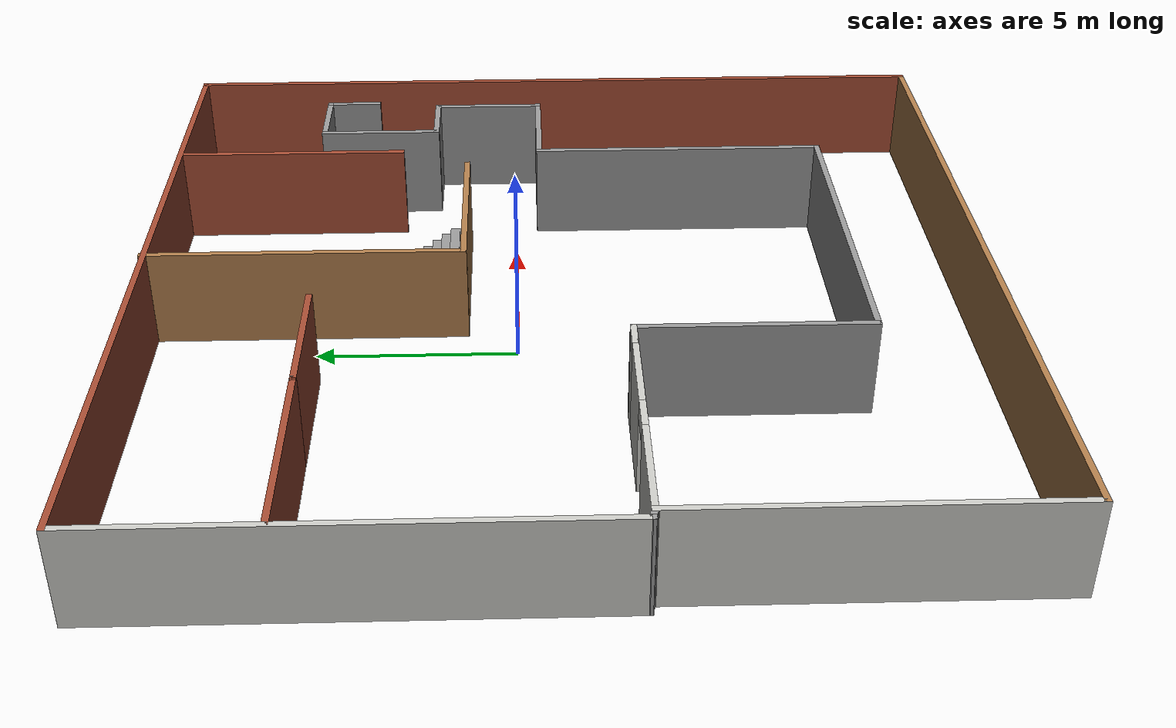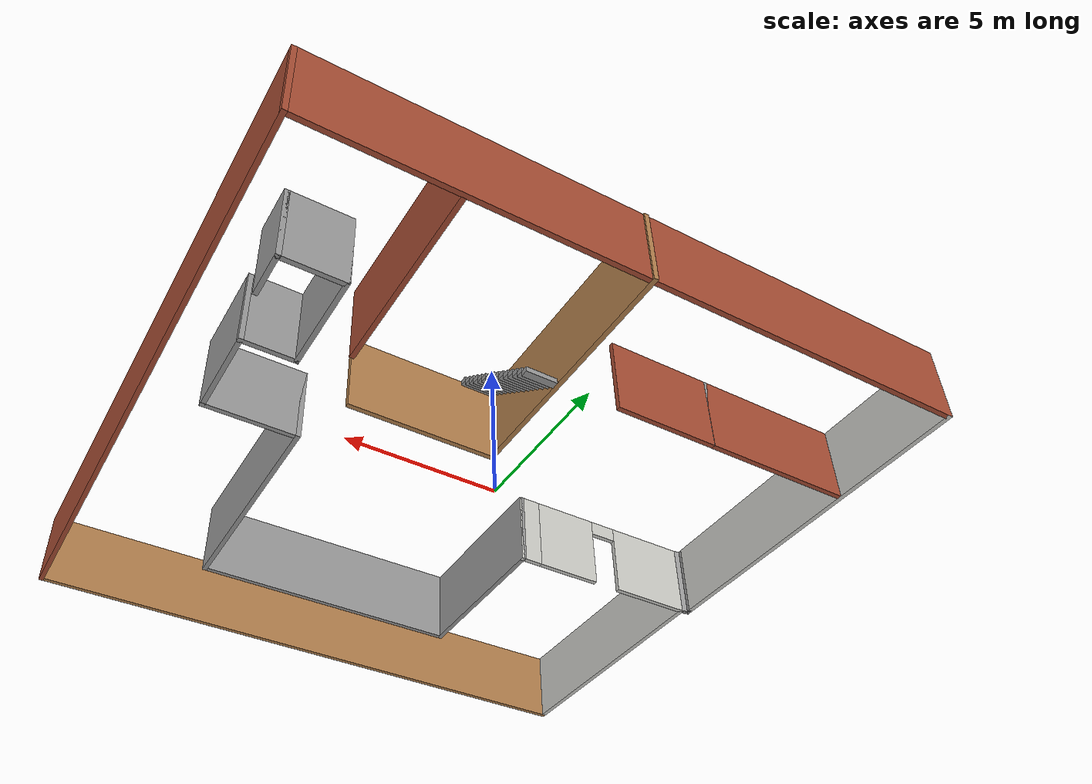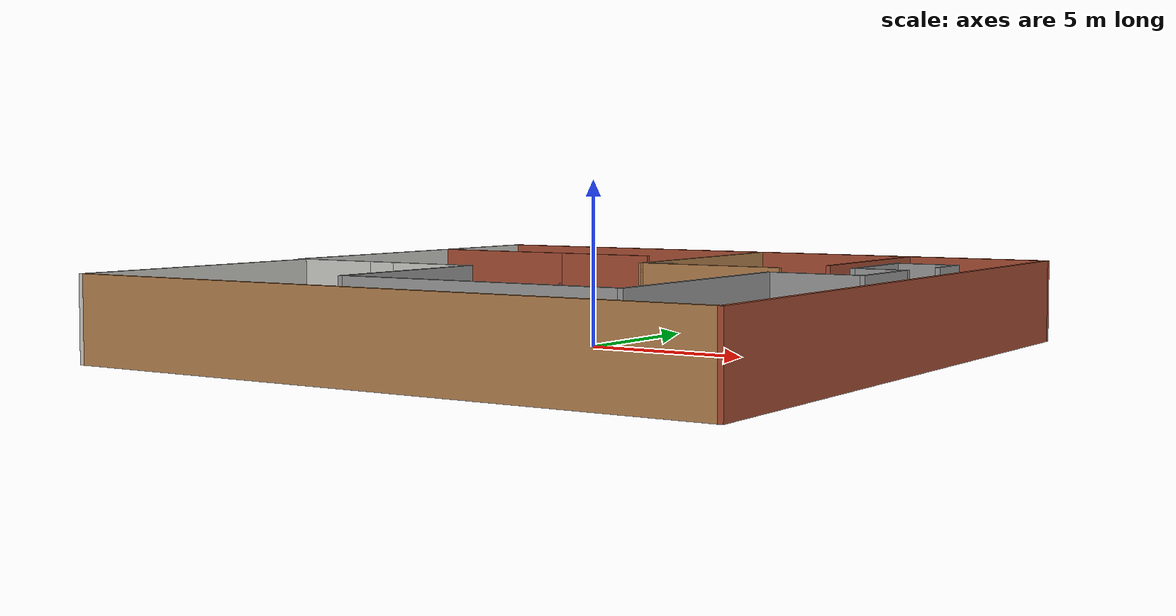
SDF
<?xml version='1.0'?>
<sdf version='1.6'>
  <model name='myroom'>
    <pose frame=''>0.693375 -1.16649 0 0 -0 0</pose>
    <link name='Stairs_1'>
      <visual name='Stairs_1_Visual_0'>
        <pose frame=''>0.763284 5.95555 0.083333 0 -0 0</pose>
        <geometry>
          <box>
            <size>1 0.233333 0.166667</size>
          </box>
        </geometry>
        <material>
          <script>
            <uri>file://media/materials/scripts/gazebo.material</uri>
            <name>Gazebo/Grey</name>
          </script>
          <ambient>1 1 1 1</ambient>
        </material>
      </visual>
      <collision name='Stairs_1_Collision_0'>
        <geometry>
          <box>
            <size>1 0.233333 0.166667</size>
          </box>
        </geometry>
        <pose frame=''>0.763284 5.95555 0.083333 0 -0 0</pose>
      </collision>
      <visual name='Stairs_1_Visual_1'>
        <pose frame=''>0.763284 5.72222 0.25 0 -0 0</pose>
        <geometry>
          <box>
            <size>1 0.233333 0.166667</size>
          </box>
        </geometry>
        <material>
          <script>
            <uri>file://media/materials/scripts/gazebo.material</uri>
            <name>Gazebo/Grey</name>
          </script>
          <ambient>1 1 1 1</ambient>
        </material>
      </visual>
      <collision name='Stairs_1_Collision_1'>
        <geometry>
          <box>
            <size>1 0.233333 0.166667</size>
          </box>
        </geometry>
        <pose frame=''>0.763284 5.72222 0.25 0 -0 0</pose>
      </collision>
      <visual name='Stairs_1_Visual_2'>
        <pose frame=''>0.763284 5.48889 0.416667 0 -0 0</pose>
        <geometry>
          <box>
            <size>1 0.233333 0.166667</size>
          </box>
        </geometry>
        <material>
          <script>
            <uri>file://media/materials/scripts/gazebo.material</uri>
            <name>Gazebo/Grey</name>
          </script>
          <ambient>1 1 1 1</ambient>
        </material>
      </visual>
      <collision name='Stairs_1_Collision_2'>
        <geometry>
          <box>
            <size>1 0.233333 0.166667</size>
          </box>
        </geometry>
        <pose frame=''>0.763284 5.48889 0.416667 0 -0 0</pose>
      </collision>
      <visual name='Stairs_1_Visual_3'>
        <pose frame=''>0.763284 5.25555 0.583333 0 -0 0</pose>
        <geometry>
          <box>
            <size>1 0.233333 0.166667</size>
          </box>
        </geometry>
        <material>
          <script>
            <uri>file://media/materials/scripts/gazebo.material</uri>
            <name>Gazebo/Grey</name>
          </script>
          <ambient>1 1 1 1</ambient>
        </material>
      </visual>
      <collision name='Stairs_1_Collision_3'>
        <geometry>
          <box>
            <size>1 0.233333 0.166667</size>
          </box>
        </geometry>
        <pose frame=''>0.763284 5.25555 0.583333 0 -0 0</pose>
      </collision>
      <visual name='Stairs_1_Visual_4'>
        <pose frame=''>0.763284 5.02222 0.75 0 -0 0</pose>
        <geometry>
          <box>
            <size>1 0.233333 0.166667</size>
          </box>
        </geometry>
        <material>
          <script>
            <uri>file://media/materials/scripts/gazebo.material</uri>
            <name>Gazebo/Grey</name>
          </script>
          <ambient>1 1 1 1</ambient>
        </material>
      </visual>
      <collision name='Stairs_1_Collision_4'>
        <geometry>
          <box>
            <size>1 0.233333 0.166667</size>
          </box>
        </geometry>
        <pose frame=''>0.763284 5.02222 0.75 0 -0 0</pose>
      </collision>
      <visual name='Stairs_1_Visual_5'>
        <pose frame=''>0.763284 4.78889 0.916667 0 -0 0</pose>
        <geometry>
          <box>
            <size>1 0.233333 0.166667</size>
          </box>
        </geometry>
        <material>
          <script>
            <uri>file://media/materials/scripts/gazebo.material</uri>
            <name>Gazebo/Grey</name>
          </script>
          <ambient>1 1 1 1</ambient>
        </material>
      </visual>
      <collision name='Stairs_1_Collision_5'>
        <geometry>
          <box>
            <size>1 0.233333 0.166667</size>
          </box>
        </geometry>
        <pose frame=''>0.763284 4.78889 0.916667 0 -0 0</pose>
      </collision>
      <visual name='Stairs_1_Visual_6'>
        <pose frame=''>0.763284 4.55555 1.08333 0 -0 0</pose>
        <geometry>
          <box>
            <size>1 0.233333 0.166667</size>
          </box>
        </geometry>
        <material>
          <script>
            <uri>file://media/materials/scripts/gazebo.material</uri>
            <name>Gazebo/Grey</name>
          </script>
          <ambient>1 1 1 1</ambient>
        </material>
      </visual>
      <collision name='Stairs_1_Collision_6'>
        <geometry>
          <box>
            <size>1 0.233333 0.166667</size>
          </box>
        </geometry>
        <pose frame=''>0.763284 4.55555 1.08333 0 -0 0</pose>
      </collision>
      <visual name='Stairs_1_Visual_7'>
        <pose frame=''>0.763284 4.32222 1.25 0 -0 0</pose>
        <geometry>
          <box>
            <size>1 0.233333 0.166667</size>
          </box>
        </geometry>
        <material>
          <script>
            <uri>file://media/materials/scripts/gazebo.material</uri>
            <name>Gazebo/Grey</name>
          </script>
          <ambient>1 1 1 1</ambient>
        </material>
      </visual>
      <collision name='Stairs_1_Collision_7'>
        <geometry>
          <box>
            <size>1 0.233333 0.166667</size>
          </box>
        </geometry>
        <pose frame=''>0.763284 4.32222 1.25 0 -0 0</pose>
      </collision>
      <visual name='Stairs_1_Visual_8'>
        <pose frame=''>0.763284 4.08889 1.41667 0 -0 0</pose>
        <geometry>
          <box>
            <size>1 0.233333 0.166667</size>
          </box>
        </geometry>
        <material>
          <script>
            <uri>file://media/materials/scripts/gazebo.material</uri>
            <name>Gazebo/Grey</name>
          </script>
          <ambient>1 1 1 1</ambient>
        </material>
      </visual>
      <collision name='Stairs_1_Collision_8'>
        <geometry>
          <box>
            <size>1 0.233333 0.166667</size>
          </box>
        </geometry>
        <pose frame=''>0.763284 4.08889 1.41667 0 -0 0</pose>
      </collision>
      <visual name='Stairs_1_Visual_9'>
        <pose frame=''>0.763284 3.85555 1.58333 0 -0 0</pose>
        <geometry>
          <box>
            <size>1 0.233333 0.166667</size>
          </box>
        </geometry>
        <material>
          <script>
            <uri>file://media/materials/scripts/gazebo.material</uri>
            <name>Gazebo/Grey</name>
          </script>
          <ambient>1 1 1 1</ambient>
        </material>
      </visual>
      <collision name='Stairs_1_Collision_9'>
        <geometry>
          <box>
            <size>1 0.233333 0.166667</size>
          </box>
        </geometry>
        <pose frame=''>0.763284 3.85555 1.58333 0 -0 0</pose>
      </collision>
      <visual name='Stairs_1_Visual_10'>
        <pose frame=''>0.763284 3.62222 1.75 0 -0 0</pose>
        <geometry>
          <box>
            <size>1 0.233333 0.166667</size>
          </box>
        </geometry>
        <material>
          <script>
            <uri>file://media/materials/scripts/gazebo.material</uri>
            <name>Gazebo/Grey</name>
          </script>
          <ambient>1 1 1 1</ambient>
        </material>
      </visual>
      <collision name='Stairs_1_Collision_10'>
        <geometry>
          <box>
            <size>1 0.233333 0.166667</size>
          </box>
        </geometry>
        <pose frame=''>0.763284 3.62222 1.75 0 -0 0</pose>
      </collision>
      <visual name='Stairs_1_Visual_11'>
        <pose frame=''>0.763284 3.38889 1.91667 0 -0 0</pose>
        <geometry>
          <box>
            <size>1 0.233333 0.166667</size>
          </box>
        </geometry>
        <material>
          <script>
            <uri>file://media/materials/scripts/gazebo.material</uri>
            <name>Gazebo/Grey</name>
          </script>
          <ambient>1 1 1 1</ambient>
        </material>
      </visual>
      <collision name='Stairs_1_Collision_11'>
        <geometry>
          <box>
            <size>1 0.233333 0.166667</size>
          </box>
        </geometry>
        <pose frame=''>0.763284 3.38889 1.91667 0 -0 0</pose>
      </collision>
      <visual name='Stairs_1_Visual_12'>
        <pose frame=''>0.763284 3.15555 2.08333 0 -0 0</pose>
        <geometry>
          <box>
            <size>1 0.233333 0.166667</size>
          </box>
        </geometry>
        <material>
          <script>
            <uri>file://media/materials/scripts/gazebo.material</uri>
            <name>Gazebo/Grey</name>
          </script>
          <ambient>1 1 1 1</ambient>
        </material>
      </visual>
      <collision name='Stairs_1_Collision_12'>
        <geometry>
          <box>
            <size>1 0.233333 0.166667</size>
          </box>
        </geometry>
        <pose frame=''>0.763284 3.15555 2.08333 0 -0 0</pose>
      </collision>
      <visual name='Stairs_1_Visual_13'>
        <pose frame=''>0.763284 2.92222 2.25 0 -0 0</pose>
        <geometry>
          <box>
            <size>1 0.233333 0.166667</size>
          </box>
        </geometry>
        <material>
          <script>
            <uri>file://media/materials/scripts/gazebo.material</uri>
            <name>Gazebo/Grey</name>
          </script>
          <ambient>1 1 1 1</ambient>
        </material>
      </visual>
      <collision name='Stairs_1_Collision_13'>
        <geometry>
          <box>
            <size>1 0.233333 0.166667</size>
          </box>
        </geometry>
        <pose frame=''>0.763284 2.92222 2.25 0 -0 0</pose>
      </collision>
      <visual name='Stairs_1_Visual_14'>
        <pose frame=''>0.763284 2.68889 2.41667 0 -0 0</pose>
        <geometry>
          <box>
            <size>1 0.233333 0.166667</size>
          </box>
        </geometry>
        <material>
          <script>
            <uri>file://media/materials/scripts/gazebo.material</uri>
            <name>Gazebo/Grey</name>
          </script>
          <ambient>1 1 1 1</ambient>
        </material>
      </visual>
      <collision name='Stairs_1_Collision_14'>
        <geometry>
          <box>
            <size>1 0.233333 0.166667</size>
          </box>
        </geometry>
        <pose frame=''>0.763284 2.68889 2.41667 0 -0 0</pose>
      </collision>
    </link>
    <link name='Wall_0'>
      <collision name='Wall_0_Collision'>
        <geometry>
          <box>
            <size>0.75 0.15 2.5</size>
          </box>
        </geometry>
        <pose frame=''>0 0 1.25 0 -0 0</pose>
      </collision>
      <visual name='Wall_0_Visual'>
        <pose frame=''>0 0 1.25 0 -0 0</pose>
        <geometry>
          <box>
            <size>0.75 0.15 2.5</size>
          </box>
        </geometry>
        <material>
          <script>
            <uri>file://media/materials/scripts/gazebo.material</uri>
            <name>Gazebo/CeilingTiled</name>
          </script>
          <ambient>1 1 1 1</ambient>
        </material>
      </visual>
      <pose frame=''>-3.64337 -1.47351 0 0 -0 3.14159</pose>
    </link>
    <link name='Wall_1'>
      <pose frame=''>-6.86838 -1.47351 0 0 -0 3.14159</pose>
      <visual name='Wall_1_Visual_0'>
        <pose frame=''>-1.83718 0 1.25 0 -0 0</pose>
        <geometry>
          <box>
            <size>2.32564 0.15 2.5</size>
          </box>
        </geometry>
        <material>
          <script>
            <uri>file://media/materials/scripts/gazebo.material</uri>
            <name>Gazebo/CeilingTiled</name>
          </script>
          <ambient>1 1 1 1</ambient>
        </material>
      </visual>
      <collision name='Wall_1_Collision_0'>
        <geometry>
          <box>
            <size>2.32564 0.15 2.5</size>
          </box>
        </geometry>
        <pose frame=''>-1.83718 0 1.25 0 -0 0</pose>
      </collision>
      <visual name='Wall_1_Visual_1'>
        <pose frame=''>1.61282 0 1.25 0 -0 0</pose>
        <geometry>
          <box>
            <size>2.77436 0.15 2.5</size>
          </box>
        </geometry>
        <material>
          <script>
            <uri>file://media/materials/scripts/gazebo.material</uri>
            <name>Gazebo/CeilingTiled</name>
          </script>
          <ambient>1 1 1 1</ambient>
        </material>
      </visual>
      <collision name='Wall_1_Collision_1'>
        <geometry>
          <box>
            <size>2.77436 0.15 2.5</size>
          </box>
        </geometry>
        <pose frame=''>1.61282 0 1.25 0 -0 0</pose>
      </collision>
      <visual name='Wall_1_Visual_2'>
        <pose frame=''>-0.224364 0 2.25 0 -0 0</pose>
        <geometry>
          <box>
            <size>0.9 0.15 0.5</size>
          </box>
        </geometry>
        <material>
          <script>
            <uri>file://media/materials/scripts/gazebo.material</uri>
            <name>Gazebo/CeilingTiled</name>
          </script>
          <ambient>1 1 1 1</ambient>
        </material>
      </visual>
      <collision name='Wall_1_Collision_2'>
        <geometry>
          <box>
            <size>0.9 0.15 0.5</size>
          </box>
        </geometry>
        <pose frame=''>-0.224364 0 2.25 0 -0 0</pose>
      </collision>
    </link>
    <link name='Wall_10'>
      <collision name='Wall_10_Collision'>
        <geometry>
          <box>
            <size>8 0.15 2.5</size>
          </box>
        </geometry>
        <pose frame=''>0 0 1.25 0 -0 0</pose>
      </collision>
      <visual name='Wall_10_Visual'>
        <pose frame=''>0 0 1.25 0 -0 0</pose>
        <geometry>
          <box>
            <size>8 0.15 2.5</size>
          </box>
        </geometry>
        <material>
          <script>
            <uri>file://media/materials/scripts/gazebo.material</uri>
            <name>Gazebo/Wood</name>
          </script>
          <ambient>1 1 1 1</ambient>
        </material>
      </visual>
      <pose frame=''>0.195005 6.39851 0 0 0 -1.5708</pose>
    </link>
    <link name='Wall_11'>
      <collision name='Wall_11_Collision'>
        <geometry>
          <box>
            <size>4.75 0.15 2.5</size>
          </box>
        </geometry>
        <pose frame=''>0 0 1.25 0 -0 0</pose>
      </collision>
      <visual name='Wall_11_Visual'>
        <pose frame=''>0 0 1.25 0 -0 0</pose>
        <geometry>
          <box>
            <size>4.75 0.15 2.5</size>
          </box>
        </geometry>
        <material>
          <script>
            <uri>file://media/materials/scripts/gazebo.material</uri>
            <name>Gazebo/Wood</name>
          </script>
          <ambient>1 1 1 1</ambient>
        </material>
      </visual>
      <pose frame=''>2.495 2.47351 0 0 -0 0</pose>
    </link>
    <link name='Wall_16'>
      <collision name='Wall_16_Collision'>
        <geometry>
          <box>
            <size>5 0.15 2.5</size>
          </box>
        </geometry>
        <pose frame=''>0 0 1.25 0 -0 0</pose>
      </collision>
      <visual name='Wall_16_Visual'>
        <pose frame=''>0 0 1.25 0 -0 0</pose>
        <geometry>
          <box>
            <size>5 0.15 2.5</size>
          </box>
        </geometry>
        <material>
          <script>
            <uri>file://media/materials/scripts/gazebo.material</uri>
            <name>Gazebo/Bricks</name>
          </script>
          <ambient>1 1 1 1</ambient>
        </material>
      </visual>
      <pose frame=''>-7.61526 6.04331 0 0 -0 0</pose>
    </link>
    <link name='Wall_17'>
      <collision name='Wall_17_Collision'>
        <geometry>
          <box>
            <size>0.16 0.15 2.5</size>
          </box>
        </geometry>
        <pose frame=''>0 0 1.25 0 -0 0</pose>
      </collision>
      <visual name='Wall_17_Visual'>
        <pose frame=''>0 0 1.25 0 -0 0</pose>
        <geometry>
          <box>
            <size>0.16 0.15 2.5</size>
          </box>
        </geometry>
        <material>
          <script>
            <uri>file://media/materials/scripts/gazebo.material</uri>
            <name>Gazebo/Grey</name>
          </script>
          <ambient>1 1 1 1</ambient>
        </material>
      </visual>
      <pose frame=''>-5.18526 6.04331 0 0 -0 0</pose>
    </link>
    <link name='Wall_18'>
      <collision name='Wall_18_Collision'>
        <geometry>
          <box>
            <size>3.5 0.15 2.5</size>
          </box>
        </geometry>
        <pose frame=''>0 0 1.25 0 -0 0</pose>
      </collision>
      <visual name='Wall_18_Visual'>
        <pose frame=''>0 0 1.25 0 -0 0</pose>
        <geometry>
          <box>
            <size>3.5 0.15 2.5</size>
          </box>
        </geometry>
        <material>
          <script>
            <uri>file://media/materials/scripts/gazebo.material</uri>
            <name>Gazebo/Bricks</name>
          </script>
          <ambient>1 1 1 1</ambient>
        </material>
      </visual>
      <pose frame=''>-3.50526 6.04331 0 0 -0 0</pose>
    </link>
    <link name='Wall_2'>
      <collision name='Wall_2_Collision'>
        <geometry>
          <box>
            <size>9 0.15 2.5</size>
          </box>
        </geometry>
        <pose frame=''>0 0 1.25 0 -0 0</pose>
      </collision>
      <visual name='Wall_2_Visual'>
        <pose frame=''>0 0 1.25 0 -0 0</pose>
        <geometry>
          <box>
            <size>9 0.15 2.5</size>
          </box>
        </geometry>
        <material>
          <script>
            <uri>file://media/materials/scripts/gazebo.material</uri>
            <name>Gazebo/CeilingTiled</name>
          </script>
          <ambient>1 1 1 1</ambient>
        </material>
      </visual>
      <pose frame=''>-9.79337 -5.89851 0 0 0 -1.5708</pose>
    </link>
    <link name='Wall_20'>
      <collision name='Wall_20_Collision'>
        <geometry>
          <box>
            <size>6 0.15 2.5</size>
          </box>
        </geometry>
        <pose frame=''>0 0 1.25 0 -0 0</pose>
      </collision>
      <visual name='Wall_20_Visual'>
        <pose frame=''>0 0 1.25 0 -0 0</pose>
        <geometry>
          <box>
            <size>6 0.15 2.5</size>
          </box>
        </geometry>
        <material>
          <script>
            <uri>file://media/materials/scripts/gazebo.material</uri>
            <name>Gazebo/Bricks</name>
          </script>
          <ambient>1 1 1 1</ambient>
        </material>
      </visual>
      <pose frame=''>5.54526 7.21241 0 0 0 -1.5708</pose>
    </link>
    <link name='Wall_22'>
      <collision name='Wall_22_Collision'>
        <geometry>
          <box>
            <size>5.75 0.15 2.5</size>
          </box>
        </geometry>
        <pose frame=''>0 0 1.25 0 -0 0</pose>
      </collision>
      <visual name='Wall_22_Visual'>
        <pose frame=''>0 0 1.25 0 -0 0</pose>
        <geometry>
          <box>
            <size>5.75 0.15 2.5</size>
          </box>
        </geometry>
        <material>
          <script>
            <uri>file://media/materials/scripts/gazebo.material</uri>
            <name>Gazebo/Grey</name>
          </script>
          <ambient>1 1 1 1</ambient>
        </material>
      </visual>
      <pose frame=''>-3.34337 -4.27351 0 0 0 -1.5708</pose>
    </link>
    <link name='Wall_23'>
      <collision name='Wall_23_Collision'>
        <geometry>
          <box>
            <size>9 0.15 2.5</size>
          </box>
        </geometry>
        <pose frame=''>0 0 1.25 0 -0 0</pose>
      </collision>
      <visual name='Wall_23_Visual'>
        <pose frame=''>0 0 1.25 0 -0 0</pose>
        <geometry>
          <box>
            <size>9 0.15 2.5</size>
          </box>
        </geometry>
        <material>
          <script>
            <uri>file://media/materials/scripts/gazebo.material</uri>
            <name>Gazebo/Grey</name>
          </script>
          <ambient>1 1 1 1</ambient>
        </material>
      </visual>
      <pose frame=''>1.08163 -7.07351 0 0 -0 0</pose>
    </link>
    <link name='Wall_24'>
      <collision name='Wall_24_Collision'>
        <geometry>
          <box>
            <size>7.75 0.15 2.5</size>
          </box>
        </geometry>
        <pose frame=''>0 0 1.25 0 -0 0</pose>
      </collision>
      <visual name='Wall_24_Visual'>
        <pose frame=''>0 0 1.25 0 -0 0</pose>
        <geometry>
          <box>
            <size>7.75 0.15 2.5</size>
          </box>
        </geometry>
        <material>
          <script>
            <uri>file://media/materials/scripts/gazebo.material</uri>
            <name>Gazebo/Grey</name>
          </script>
          <ambient>1 1 1 1</ambient>
        </material>
      </visual>
      <pose frame=''>5.50662 -3.27351 0 0 -0 1.5708</pose>
    </link>
    <link name='Wall_25'>
      <collision name='Wall_25_Collision'>
        <geometry>
          <box>
            <size>3 0.15 2.5</size>
          </box>
        </geometry>
        <pose frame=''>0 0 1.25 0 -0 0</pose>
      </collision>
      <visual name='Wall_25_Visual'>
        <pose frame=''>0 0 1.25 0 -0 0</pose>
        <geometry>
          <box>
            <size>3 0.15 2.5</size>
          </box>
        </geometry>
        <material>
          <script>
            <uri>file://media/materials/scripts/gazebo.material</uri>
            <name>Gazebo/Grey</name>
          </script>
          <ambient>1 1 1 1</ambient>
        </material>
      </visual>
      <pose frame=''>6.93163 0.526491 0 0 -0 0</pose>
    </link>
    <link name='Wall_26'>
      <collision name='Wall_26_Collision'>
        <geometry>
          <box>
            <size>3 0.15 2.5</size>
          </box>
        </geometry>
        <pose frame=''>0 0 1.25 0 -0 0</pose>
      </collision>
      <visual name='Wall_26_Visual'>
        <pose frame=''>0 0 1.25 0 -0 0</pose>
        <geometry>
          <box>
            <size>3 0.15 2.5</size>
          </box>
        </geometry>
        <material>
          <script>
            <uri>file://media/materials/scripts/gazebo.material</uri>
            <name>Gazebo/Grey</name>
          </script>
          <ambient>1 1 1 1</ambient>
        </material>
      </visual>
      <pose frame=''>8.35663 1.95149 0 0 -0 1.5708</pose>
    </link>
    <link name='Wall_27'>
      <collision name='Wall_27_Collision'>
        <geometry>
          <box>
            <size>1.75 0.15 2.5</size>
          </box>
        </geometry>
        <pose frame=''>0 0 1.25 0 -0 0</pose>
      </collision>
      <visual name='Wall_27_Visual'>
        <pose frame=''>0 0 1.25 0 -0 0</pose>
        <geometry>
          <box>
            <size>1.75 0.15 2.5</size>
          </box>
        </geometry>
        <material>
          <script>
            <uri>file://media/materials/scripts/gazebo.material</uri>
            <name>Gazebo/Grey</name>
          </script>
          <ambient>1 1 1 1</ambient>
        </material>
      </visual>
      <pose frame=''>7.55663 3.37649 0 0 -0 3.14159</pose>
    </link>
    <link name='Wall_28'>
      <collision name='Wall_28_Collision'>
        <geometry>
          <box>
            <size>3.25 0.15 2.5</size>
          </box>
        </geometry>
        <pose frame=''>0 0 1.25 0 -0 0</pose>
      </collision>
      <visual name='Wall_28_Visual'>
        <pose frame=''>0 0 1.25 0 -0 0</pose>
        <geometry>
          <box>
            <size>3.25 0.15 2.5</size>
          </box>
        </geometry>
        <material>
          <script>
            <uri>file://media/materials/scripts/gazebo.material</uri>
            <name>Gazebo/Grey</name>
          </script>
          <ambient>1 1 1 1</ambient>
        </material>
      </visual>
      <pose frame=''>6.75662 4.92649 0 0 -0 1.5708</pose>
    </link>
    <link name='Wall_29'>
      <collision name='Wall_29_Collision'>
        <geometry>
          <box>
            <size>2 0.15 2.5</size>
          </box>
        </geometry>
        <pose frame=''>0 0 1.25 0 -0 0</pose>
      </collision>
      <visual name='Wall_29_Visual'>
        <pose frame=''>0 0 1.25 0 -0 0</pose>
        <geometry>
          <box>
            <size>2 0.15 2.5</size>
          </box>
        </geometry>
        <material>
          <script>
            <uri>file://media/materials/scripts/gazebo.material</uri>
            <name>Gazebo/Grey</name>
          </script>
          <ambient>1 1 1 1</ambient>
        </material>
      </visual>
      <pose frame=''>7.68163 6.47649 0 0 -0 0</pose>
    </link>
    <link name='Wall_3'>
      <collision name='Wall_3_Collision'>
        <geometry>
          <box>
            <size>20 0.15 2.5</size>
          </box>
        </geometry>
        <pose frame=''>0 0 1.25 0 -0 0</pose>
      </collision>
      <visual name='Wall_3_Visual'>
        <pose frame=''>0 0 1.25 0 -0 0</pose>
        <geometry>
          <box>
            <size>20 0.15 2.5</size>
          </box>
        </geometry>
        <material>
          <script>
            <uri>file://media/materials/scripts/gazebo.material</uri>
            <name>Gazebo/Wood</name>
          </script>
          <ambient>1 1 1 1</ambient>
        </material>
      </visual>
      <pose frame=''>0.131625 -10.3235 0 0 -0 0</pose>
    </link>
    <link name='Wall_30'>
      <collision name='Wall_30_Collision'>
        <geometry>
          <box>
            <size>0.16 0.15 2.5</size>
          </box>
        </geometry>
        <pose frame=''>0 0 1.25 0 -0 0</pose>
      </collision>
      <visual name='Wall_30_Visual'>
        <pose frame=''>0 0 1.25 0 -0 0</pose>
        <geometry>
          <box>
            <size>0.16 0.15 2.5</size>
          </box>
        </geometry>
        <material>
          <script>
            <uri>file://media/materials/scripts/gazebo.material</uri>
            <name>Gazebo/Grey</name>
          </script>
          <ambient>1 1 1 1</ambient>
        </material>
      </visual>
      <pose frame=''>8.61163 6.47649 0 0 -0 0</pose>
    </link>
    <link name='Wall_31'>
      <collision name='Wall_31_Collision'>
        <geometry>
          <box>
            <size>1.5 0.15 2.5</size>
          </box>
        </geometry>
        <pose frame=''>0 0 1.25 0 -0 0</pose>
      </collision>
      <visual name='Wall_31_Visual'>
        <pose frame=''>0 0 1.25 0 -0 0</pose>
        <geometry>
          <box>
            <size>1.5 0.15 2.5</size>
          </box>
        </geometry>
        <material>
          <script>
            <uri>file://media/materials/scripts/gazebo.material</uri>
            <name>Gazebo/Grey</name>
          </script>
          <ambient>1 1 1 1</ambient>
        </material>
      </visual>
      <pose frame=''>8.61663 5.80149 0 0 0 -1.5708</pose>
    </link>
    <link name='Wall_4'>
      <collision name='Wall_4_Collision'>
        <geometry>
          <box>
            <size>20.75 0.15 2.5</size>
          </box>
        </geometry>
        <pose frame=''>0 0 1.25 0 -0 0</pose>
      </collision>
      <visual name='Wall_4_Visual'>
        <pose frame=''>0 0 1.25 0 -0 0</pose>
        <geometry>
          <box>
            <size>20.75 0.15 2.5</size>
          </box>
        </geometry>
        <material>
          <script>
            <uri>file://media/materials/scripts/gazebo.material</uri>
            <name>Gazebo/Bricks</name>
          </script>
          <ambient>1 1 1 1</ambient>
        </material>
      </visual>
      <pose frame=''>10.0566 -0.02351 0 0 -0 1.5708</pose>
    </link>
    <link name='Wall_5'>
      <collision name='Wall_5_Collision'>
        <geometry>
          <box>
            <size>20.25 0.15 2.5</size>
          </box>
        </geometry>
        <pose frame=''>0 0 1.25 0 -0 0</pose>
      </collision>
      <visual name='Wall_5_Visual'>
        <pose frame=''>0 0 1.25 0 -0 0</pose>
        <geometry>
          <box>
            <size>20.25 0.15 2.5</size>
          </box>
        </geometry>
        <material>
          <script>
            <uri>file://media/materials/scripts/gazebo.material</uri>
            <name>Gazebo/Bricks</name>
          </script>
          <ambient>1 1 1 1</ambient>
        </material>
      </visual>
      <pose frame=''>0.006625 10.2765 0 0 -0 3.14159</pose>
    </link>
    <link name='Wall_6'>
      <collision name='Wall_6_Collision'>
        <geometry>
          <box>
            <size>11.75 0.15 2.5</size>
          </box>
        </geometry>
        <pose frame=''>0 0 1.25 0 -0 0</pose>
      </collision>
      <visual name='Wall_6_Visual'>
        <pose frame=''>0 0 1.25 0 -0 0</pose>
        <geometry>
          <box>
            <size>11.75 0.15 2.5</size>
          </box>
        </geometry>
        <material>
          <script>
            <uri>file://media/materials/scripts/gazebo.material</uri>
            <name>Gazebo/CeilingTiled</name>
          </script>
          <ambient>1 1 1 1</ambient>
        </material>
      </visual>
      <pose frame=''>-10.0434 4.47649 0 0 0 -1.5708</pose>
    </link>
    <link name='Wall_7'>
      <collision name='Wall_7_Collision'>
        <geometry>
          <box>
            <size>0.25 0.15 2.5</size>
          </box>
        </geometry>
        <pose frame=''>0 0 1.25 0 -0 0</pose>
      </collision>
      <visual name='Wall_7_Visual'>
        <pose frame=''>0 0 1.25 0 -0 0</pose>
        <geometry>
          <box>
            <size>0.25 0.15 2.5</size>
          </box>
        </geometry>
        <material>
          <script>
            <uri>file://media/materials/scripts/gazebo.material</uri>
            <name>Gazebo/Grey</name>
          </script>
          <ambient>1 1 1 1</ambient>
        </material>
      </visual>
      <pose frame=''>-10.0434 -1.37351 0 0 0 -1.5708</pose>
    </link>
    <link name='Wall_8'>
      <collision name='Wall_8_Collision'>
        <geometry>
          <box>
            <size>0.404951 0.15 2.5</size>
          </box>
        </geometry>
        <pose frame=''>0 0 1.25 0 -0 0</pose>
      </collision>
      <visual name='Wall_8_Visual'>
        <pose frame=''>0 0 1.25 0 -0 0</pose>
        <geometry>
          <box>
            <size>0.404951 0.15 2.5</size>
          </box>
        </geometry>
        <material>
          <script>
            <uri>file://media/materials/scripts/gazebo.material</uri>
            <name>Gazebo/Grey</name>
          </script>
          <ambient>1 1 1 1</ambient>
        </material>
      </visual>
      <pose frame=''>-9.91837 -1.44851 0 0 0 -0.197396</pose>
    </link>
    <static>1</static>
  </model>
</sdf>
